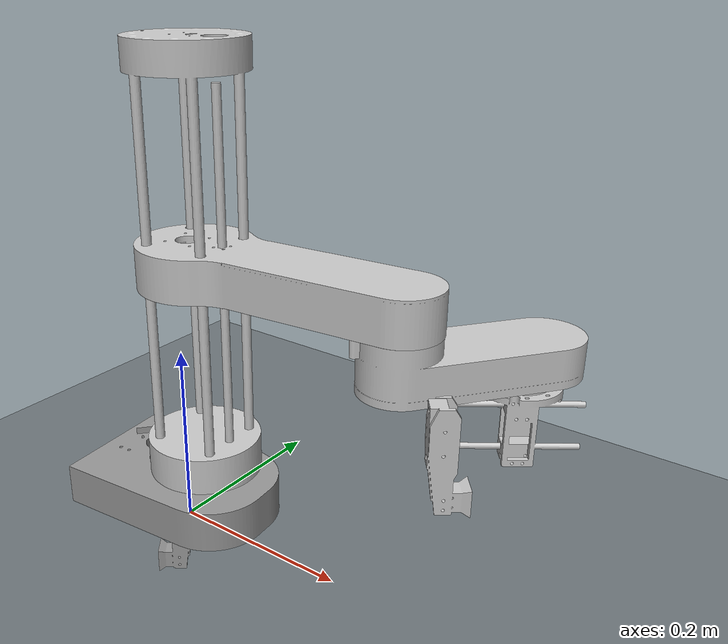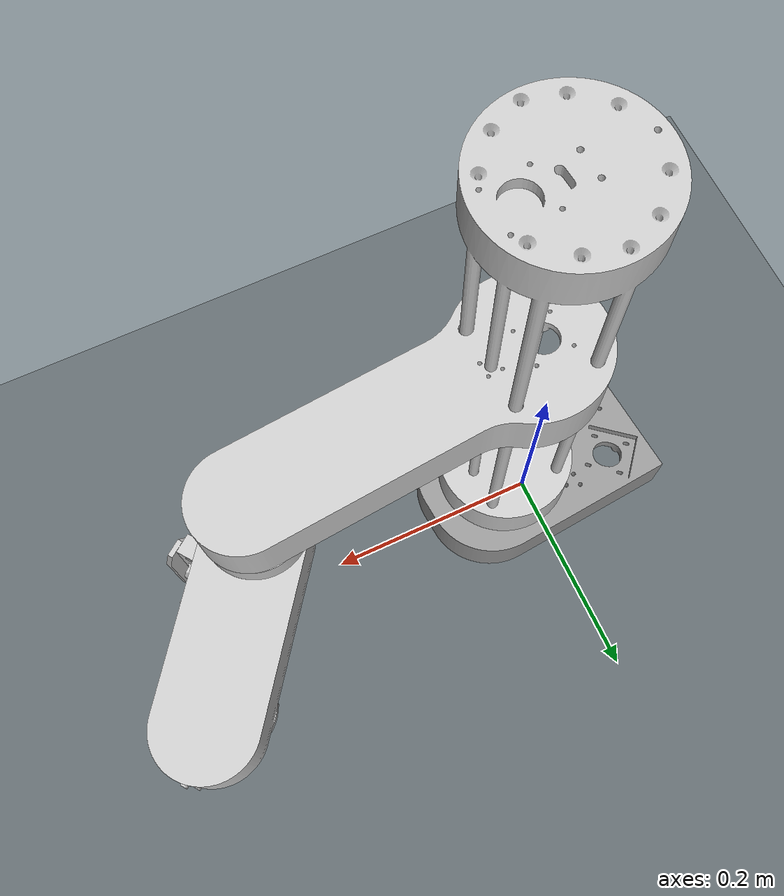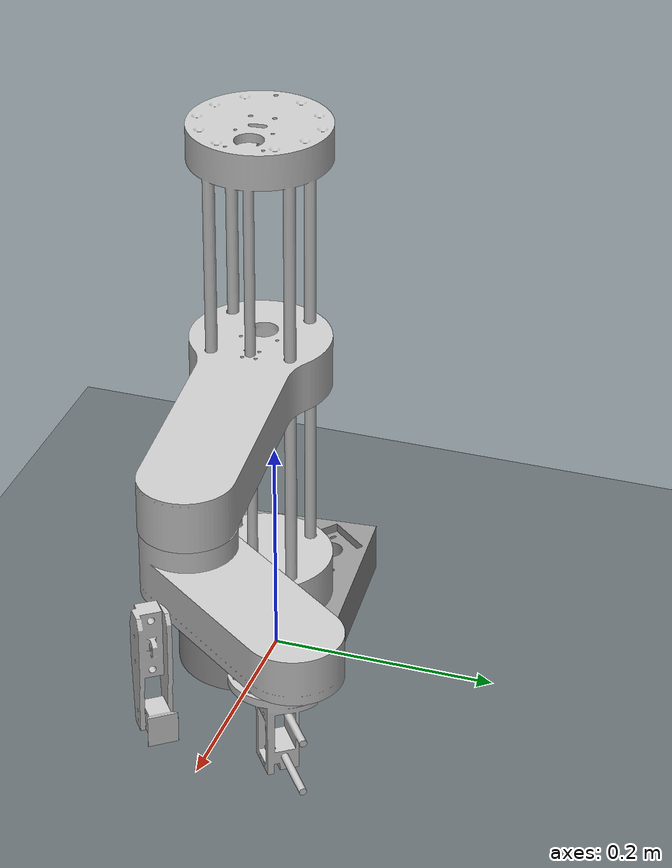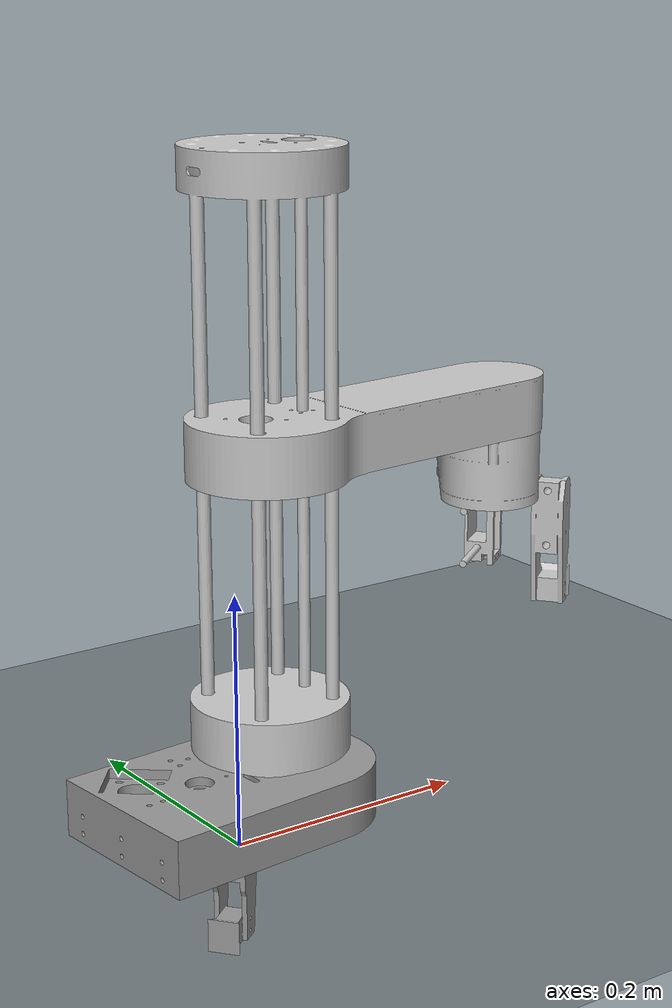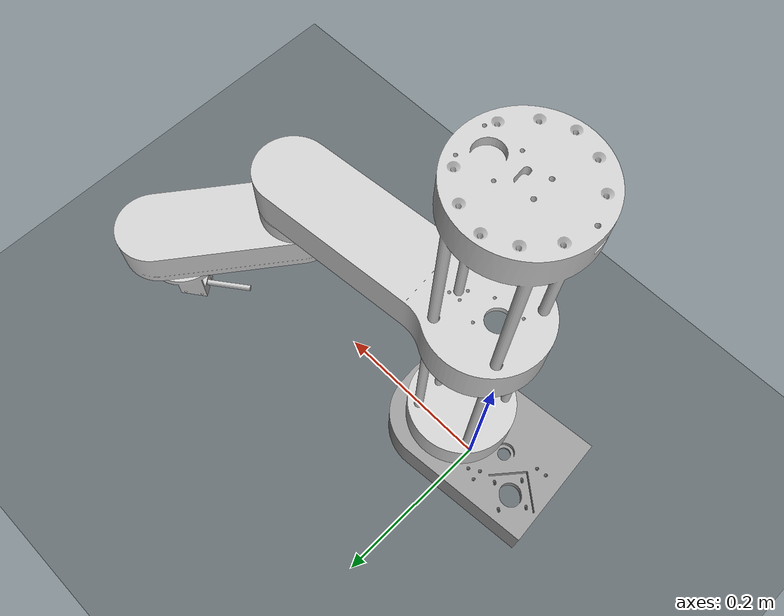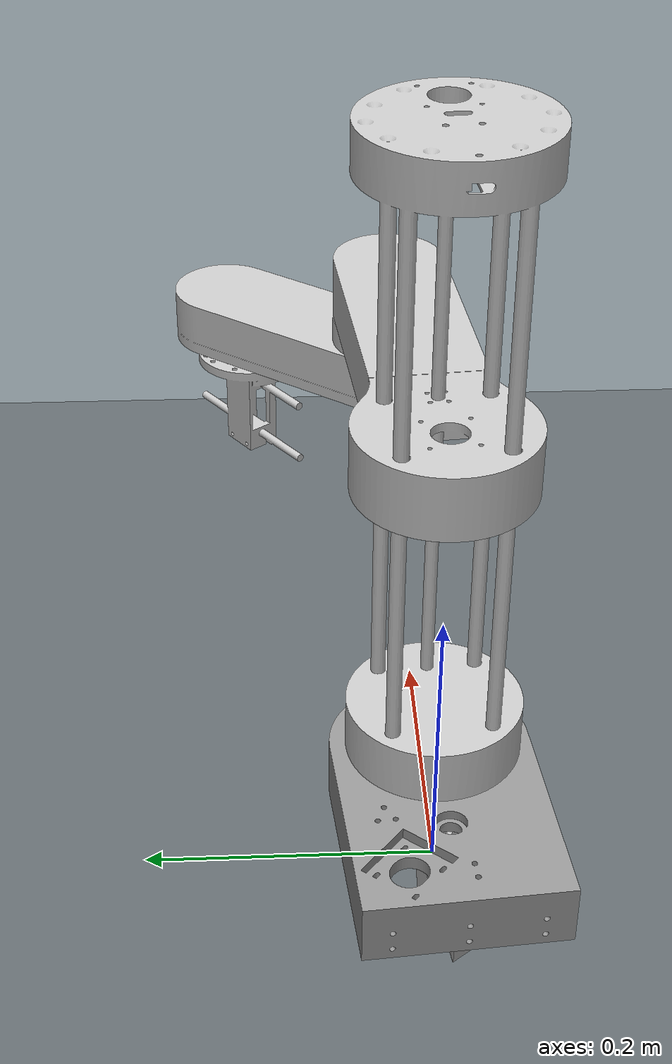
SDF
<?xml version="1.0"?>
<sdf version="1.10">
  <world name="urdf_to_sdf_gazebo_world">

    <!-- Physics setup -->
    <physics name="1ms" type="Simbody">
      <max_step_size>0.001</max_step_size>
      <real_time_factor>1.0</real_time_factor>

    </physics>

    <!-- Essential plugins -->
    <plugin
      filename="gz-sim-physics-system"
      name="gz::sim::systems::Physics">
    </plugin>
    <plugin
      filename="gz-sim-user-commands-system"
      name="gz::sim::systems::UserCommands">
    </plugin>
    <plugin
      filename="gz-sim-scene-broadcaster-system"
      name="gz::sim::systems::SceneBroadcaster">
    </plugin>

    <!-- Lighting -->
    <light type="directional" name="sun">
      <cast_shadows>true</cast_shadows>
      <pose>0 0 10 0 0 0</pose>
      <diffuse>0.8 0.8 0.8 1</diffuse>
      <specular>0.2 0.2 0.2 1</specular>
      <attenuation>
        <range>1000</range>
        <constant>0.9</constant>
        <linear>0.01</linear>
        <quadratic>0.001</quadratic>
      </attenuation>
      <direction>-0.5 0.1 -0.9</direction>
    </light>

    <!-- Ground plane -->
    <model name="ground_plane">
      <static>true</static>
      <link name="link">
        <collision name="collision">
          <geometry>
            <plane>
              <normal>0 0 1</normal>
              <size>100 100</size>
            </plane>
          </geometry>
        </collision>
        <visual name="visual">
          <geometry>
            <plane>
              <normal>0 0 1</normal>
              <size>100 100</size>
            </plane>
          </geometry>
          <material>
            <ambient>0.2 0.2 0.2 1</ambient>
            <diffuse>0.2 0.2 0.2 1</diffuse>
            <specular>0.1 0.1 0.1 1</specular>
          </material>
        </visual>
      </link>
    </model>

    <!-- Main robot model -->
    <model name="urdf_to_sdf_gazebo">
      <pose>0 0 0.03 0 0 0</pose>
      <link name="base_link">
        <inertial>
          <pose>-0.0070117442454045035 -0.004059755672044273 0.01853626945061938 0 0 0</pose>
          <mass>3.938894865418581</mass>
          <inertia>
            <ixx>0.009172</ixx>
            <iyy>0.018106</iyy>
            <izz>0.026037</izz>
            <ixy>-0.000742</ixy>
            <iyz>3.6e-05</iyz>
            <ixz>-0.000108</ixz>
          </inertia>
        </inertial>

        <visual name="base_link_visual">
          <pose>0 0 0 0 0 0</pose>
          <geometry>
            <mesh>
              <uri>file:///home/general/urdf_to_sdf_gazebo_description/meshes/base_link.stl</uri>
              <scale>0.001 0.001 0.001</scale>
            </mesh>
          </geometry>
          <material>
            <ambient>0.6 0.6 0.6 1</ambient>
            <diffuse>0.6 0.6 0.6 1</diffuse>
            <specular>0.5 0.5 0.5 1</specular>
          </material>
        </visual>

        <collision name="base_link_collision">
          <pose>0 0 0 0 0 0</pose>
          <geometry>
            <mesh>
              <uri>file:///home/general/urdf_to_sdf_gazebo_description/meshes/base_link.stl</uri>
              <scale>0.001 0.001 0.001</scale>
            </mesh>
          </geometry>
        </collision>
      </link>

      <!-- Fixed joint to connect base to world -->
      <joint name="base_link_fixed_joint" type="fixed">
        <parent>world</parent>
        <child>base_link</child>
      </joint>

      <link name="gripper_handleftlink_1">

        <inertial>
          <pose>-0.010868150575173707 -0.008378638812419237 -0.046602806658064974 0 0 0</pose>
          <mass>0.36256322250397477</mass>
          <inertia>
            <ixx>0.000417</ixx>
            <iyy>0.000417</iyy>
            <izz>5.8e-05</izz>
            <ixy>-4e-06</ixy>
            <iyz>-3.8e-05</iyz>
            <ixz>-4.7e-05</ixz>
          </inertia>
        </inertial>

        <visual name="gripper_handleftlink_1_visual">
          <pose>-0.400195 -0.16626 -0.128702 0 0 0</pose>
          <geometry>
            <mesh>
              <uri>
                file:///home/general/urdf_to_sdf_gazebo_description/meshes/gripper_handleftlink_1.stl</uri>
              <scale>0.001 0.001 0.001</scale>
            </mesh>
          </geometry>
          <material>
            <ambient>0.8 0.8 0.8 1</ambient>
            <diffuse>0.8 0.8 0.8 1</diffuse>
            <specular>1.0 1.0 1.0 1</specular>
          </material>
        </visual>

        <collision name="gripper_handleftlink_1_collision">
          <pose>-0.400195 -0.16626 -0.128702 0 0 0</pose>
          <geometry>
            <mesh>
              <uri>
                file:///home/general/urdf_to_sdf_gazebo_description/meshes/gripper_handleftlink_1.stl</uri>
              <scale>0.001 0.001 0.001</scale>
            </mesh>
          </geometry>
        </collision>
      </link>

      <link name="gripper_mechanismslider_link_1">
        <pose>0.3 0 0.2 0 0 0</pose>
        <inertial>
          <pose>0.012024165264874431 0.009150823772680894 -0.04620580836729517 0 0 0</pose>
          <mass>0.3625920933827462</mass>
          <inertia>
            <ixx>0.000411</ixx>
            <iyy>0.000413</iyy>
            <izz>6.1e-05</izz>
            <ixy>-6e-06</ixy>
            <iyz>4.1e-05</iyz>
            <ixz>5.3e-05</ixz>
          </inertia>
        </inertial>

        <visual name="gripper_mechanismslider_link_1_visual">
          <pose>-0.299785 -0.09181 -0.128702 0 0 0</pose>
          <geometry>
            <mesh>
              <uri>
                file:///home/general/urdf_to_sdf_gazebo_description/meshes/gripper_mechanismslider_link_1.stl</uri>
              <scale>0.001 0.001 0.001</scale>
            </mesh>
          </geometry>
          <material>
            <ambient>0.8 0.8 0.8 1</ambient>
            <diffuse>0.8 0.8 0.8 1</diffuse>
            <specular>1.0 1.0 1.0 1</specular>
          </material>
        </visual>

        <collision name="gripper_mechanismslider_link_1_collision">
          <pose>-0.299785 -0.09181 -0.128702 0 0 0</pose>
          <geometry>
            <mesh>
              <uri>
                file:///home/general/urdf_to_sdf_gazebo_description/meshes/gripper_mechanismslider_link_1.stl</uri>
              <scale>0.001 0.001 0.001</scale>
            </mesh>
          </geometry>
        </collision>
      </link>

      <link name="gripper_rail_6mm_bottom_link_1">
        <pose>0.33 0.12 0.2 0 0 0</pose>
        <inertial>
          <pose>0.00022857868610060006 0.0004476121226026364 -0.029491948728123968 0 0 0</pose>
          <mass>0.6641305311549246</mass>
          <inertia>
            <ixx>0.000618</ixx>
            <iyy>0.000653</iyy>
            <izz>0.000363</izz>
            <ixy>-5.3e-05</ixy>
            <iyz>-3e-06</iyz>
            <ixz>5e-06</ixz>
          </inertia>
        </inertial>

        <visual name="gripper_rail_6mm_bottom_link_1_visual">
          <pose>-0.349498 -0.128931 -0.162637 0 0 0</pose>
          <geometry>
            <mesh>
              <uri>
                file:///home/general/urdf_to_sdf_gazebo_description/meshes/gripper_rail_6mm_bottom_link_1.stl</uri>
              <scale>0.001 0.001 0.001</scale>
            </mesh>
          </geometry>
          <material>
            <ambient>0.8 0.8 0.8 1</ambient>
            <diffuse>0.8 0.8 0.8 1</diffuse>
            <specular>1.0 1.0 1.0 1</specular>
          </material>
        </visual>

        <collision name="gripper_rail_6mm_bottom_link_1_collision">
          <pose>-0.349498 -0.128931 -0.162637 0 0 0</pose>
          <geometry>
            <mesh>
              <uri>
                file:///home/general/urdf_to_sdf_gazebo_description/meshes/gripper_rail_6mm_bottom_link_1.stl</uri>
              <scale>0.001 0.001 0.001</scale>
            </mesh>
          </geometry>
        </collision>
      </link>

      <link name="arm_two_cover_link_1">
        <pose>0.256 0.02 0.255 0 0 0</pose>
        <inertial>
          <pose>0.035241807533543335 0.04796212281162526 -0.03376987123810021 0 0 0</pose>
          <mass>2.511589379326445</mass>
          <inertia>
            <ixx>0.007821</ixx>
            <pose>0 0 0.0135 0 0 0</pose>
            <iyy>0.005245</iyy>
            <izz>0.011615</izz>
            <ixy>-0.004163</ixy>
            <iyz>0.000509</iyz>
            <ixz>0.000373</ixz>
          </inertia>
        </inertial>

        <visual name="arm_two_cover_link_1_visual">
          <pose>-0.268734 -0.019208 -0.22035 0 0 0</pose>
          <geometry>
            <mesh>
              <uri>
                file:///home/general/urdf_to_sdf_gazebo_description/meshes/arm_two_cover_link_1.stl</uri>
              <scale>0.001 0.001 0.001</scale>
            </mesh>
          </geometry>
          <material>
            <ambient>0.8 0.8 0.8 1</ambient>
            <diffuse>0.8 0.8 0.8 1</diffuse>
            <specular>1.0 1.0 1.0 1</specular>
          </material>
        </visual>

        <collision name="arm_two_cover_link_1_collision">
          <pose>-0.268734 -0.019208 -0.22035 0 0 0</pose>
          <geometry>
            <mesh>
              <uri>
                file:///home/general/urdf_to_sdf_gazebo_description/meshes/arm_two_cover_link_1.stl</uri>
              <scale>0.001 0.001 0.001</scale>
            </mesh>
          </geometry>
        </collision>
      </link>

      <link name="z-axis_top_plate_link_1">
        <pose>0.03 0 0.0335 0 0 0</pose>
        <inertial>
          <pose>0.0008602439988536284 0.0002178103000136028 0.18808008938577278 0 0 0</pose>
          <mass>4.175380318770853</mass>
          <inertia>
            <ixx>0.146443</ixx>
            <iyy>0.146523</iyy>
            <izz>0.008141</izz>
            <ixy>-1.4e-05</ixy>
            <iyz>-0.000149</iyz>
            <ixz>9.2e-05</ixz>
          </inertia>
        </inertial>

        <visual name="z-axis_top_plate_link_1_visual">
          <pose>-0.041226 9.1e-05 -0.033561 0 0 0</pose>
          <geometry>
            <mesh>
              <uri>
                file:///home/general/urdf_to_sdf_gazebo_description/meshes/z-axis_top_plate_link_1.stl</uri>
              <scale>0.001 0.001 0.001</scale>
            </mesh>
          </geometry>
          <material>
            <ambient>0.8 0.8 0.8 1</ambient>
            <diffuse>0.8 0.8 0.8 1</diffuse>
            <specular>1.0 1.0 1.0 1</specular>
          </material>
        </visual>

        <collision name="z-axis_top_plate_link_1_collision">
          <pose>-0.041226 9.1e-05 -0.033561 0 0 0</pose>
          <geometry>
            <mesh>
              <uri>
                file:///home/general/urdf_to_sdf_gazebo_description/meshes/z-axis_top_plate_link_1.stl</uri>
              <scale>0.001 0.001 0.001</scale>
            </mesh>
          </geometry>
        </collision>
      </link>

      <link name="arm_cover_link_1">
        <pose>0.063 0.0025 0.3 0 0 0</pose>
        <inertial>
          <pose>0.06134439992643813 0.0054249821664409895 -0.022471905199493963 0 0 0</pose>
          <mass>3.3320688978919453</mass>
          <inertia>
            <ixx>0.003993</ixx>
            <iyy>0.02822</iyy>
            <izz>0.030522</izz>
            <ixy>-0.002139</ixy>
            <iyz>0.000107</iyz>
            <ixz>0.001225</ixz>
          </inertia>
        </inertial>

        <visual name="arm_cover_link_1_visual">
          <pose>-0.074476 -0.002213 -0.26485 0 0 0</pose>
          <geometry>
            <mesh>
              <uri>file:///home/general/urdf_to_sdf_gazebo_description/meshes/arm_cover_link_1.stl</uri>
              <scale>0.001 0.001 0.001</scale>
            </mesh>
          </geometry>
          <material>
            <ambient>0.8 0.8 0.8 1</ambient>
            <diffuse>0.8 0.8 0.8 1</diffuse>
            <specular>1.0 1.0 1.0 1</specular>
          </material>
        </visual>

        <collision name="arm_cover_link_1_collision">
          <pose>-0.074476 -0.002213 -0.26485 0 0 0</pose>
          <geometry>
            <mesh>
              <uri>file:///home/general/urdf_to_sdf_gazebo_description/meshes/arm_cover_link_1.stl</uri>
              <scale>0.001 0.001 0.001</scale>
            </mesh>
          </geometry>
        </collision>
      </link>

      <!-- Joints -->
      <joint name="Slider_4" type="prismatic">
        <parent>gripper_rail_6mm_bottom_link_1</parent>
        <child>gripper_handleftlink_1</child>
        <pose>0.050697 0.037329 -0.033935 0 0 0</pose>
        <axis>
          <xyz>0.803283 0.595598 0.0</xyz>
          <limit>
            <lower>-0.015</lower>
            <upper>0.0</upper>
            <effort>100</effort>
            <velocity>100</velocity>
          </limit>
        </axis>
      </joint>

      <joint name="Slider_5" type="prismatic">
        <parent>gripper_rail_6mm_bottom_link_1</parent>
        <child>gripper_mechanismslider_link_1</child>
        <pose>-0.049713 -0.037121 -0.033935 0 0 0</pose>
        <axis>
          <xyz>-0.803283 -0.595598 0.0</xyz>
          <limit>
            <lower>-0.019</lower>
            <upper>0.0</upper>
            <effort>100</effort>
            <velocity>100</velocity>
          </limit>
        </axis>
      </joint>

      <joint name="Revolute_7" type="revolute">
        <parent>arm_two_cover_link_1</parent>
        <child>gripper_rail_6mm_bottom_link_1</child>
        <pose>0.080764 0.109723 -0.057713 0 0 0</pose>
        <axis>
          <xyz>0.0 0.0 1.0</xyz>
          <limit>
            <lower>-0.959931</lower>
            <upper>2.007129</upper>
            <effort>100</effort>
            <velocity>100</velocity>
          </limit>
        </axis>
      </joint>

      <joint name="Revolute_8" type="revolute">
        <parent>arm_cover_link_1</parent>
        <child>arm_two_cover_link_1</child>
        <pose>0.194258 0.016995 -0.0445 0 0 0</pose>
        <axis>
          <xyz>0.0 0.0 1.0</xyz>
          <limit>
            <lower>-3.316126</lower>
            <upper>1.570796</upper>
            <effort>100</effort>
            <velocity>100</velocity>
          </limit>
        </axis>
      </joint>

      <joint name="Revolute_10" type="revolute">
        <parent>base_link</parent>
        <child>z-axis_top_plate_link_1</child>
        <pose>0.041226 -9.1e-05 0.033561 0 0 0</pose>
        <axis>
          <xyz>0.0 0.0 1.0</xyz>
          <limit>
            <lower>-2.356194</lower>
            <upper>2.007129</upper>
            <effort>100</effort>
            <velocity>100</velocity>
          </limit>
        </axis>
      </joint>

      <joint name="Slider_11" type="prismatic">
        <parent>z-axis_top_plate_link_1</parent>
        <child>arm_cover_link_1</child>
        <pose>0.03325 0.002304 0.231289 0 0 0</pose>
        <axis>
          <xyz>0.0 0.0 -1.0</xyz>
          <limit>
            <lower>-0.13</lower>
            <upper>0.1</upper>
            <effort>100</effort>
            <velocity>100</velocity>
          </limit>
        </axis>
      </joint>

    </model>

  </world>
</sdf>
